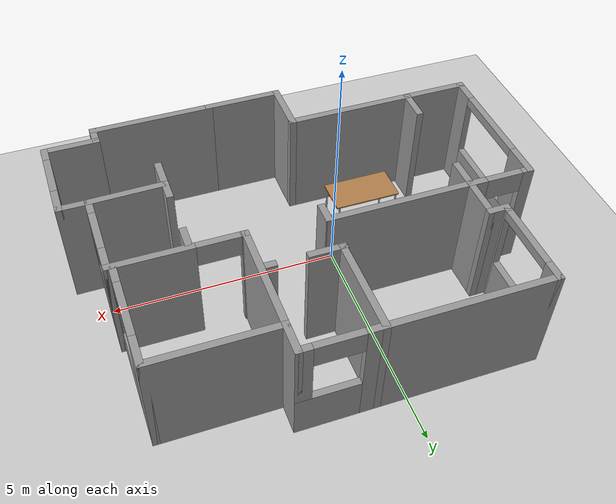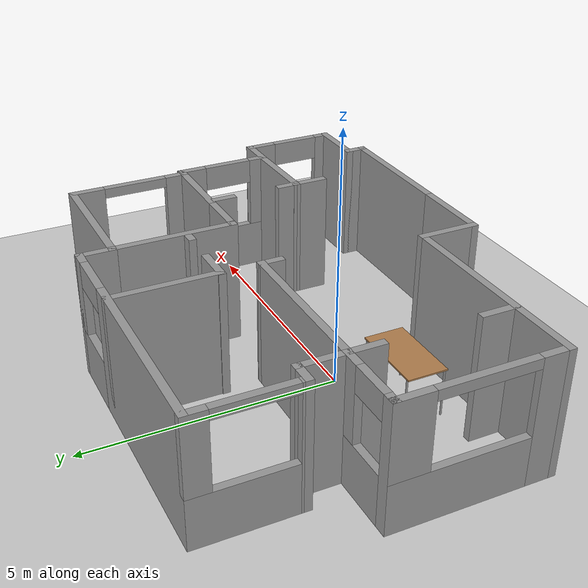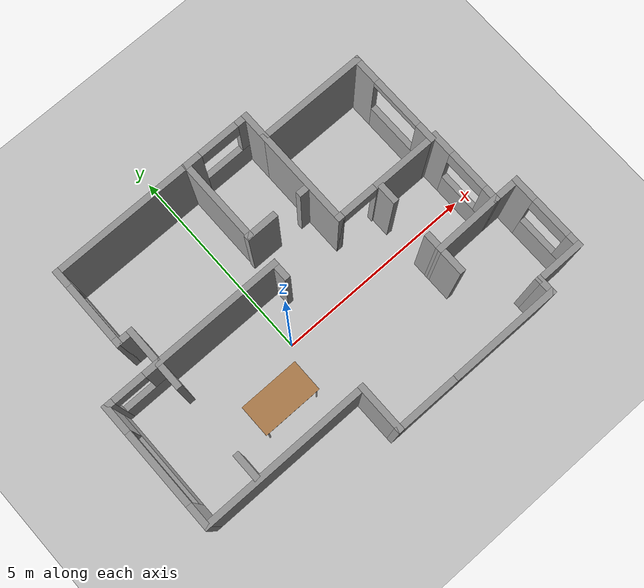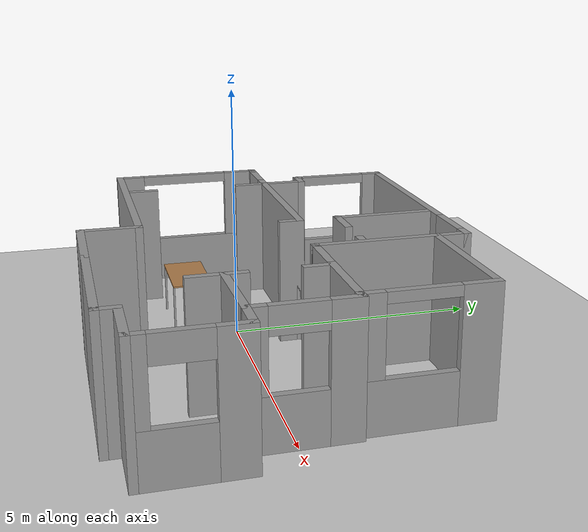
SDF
<sdf version="1.7">
 <world name="default">
  <light name="sun" type="directional">
   <pose>0 0 10 0 -0 0</pose>
   <diffuse>0.8 0.8 0.8 1</diffuse>
   <specular>0.2 0.2 0.2 1</specular>
   <attenuation>
    <range>1000</range>
    <constant>0.9</constant>
    <linear>0.01</linear>
    <quadratic>0.001</quadratic>
   </attenuation>
   <direction>-0.5 0.1 -0.9</direction>
   <spot><inner_angle>0</inner_angle><outer_angle>0</outer_angle><falloff>0</falloff></spot>
  </light>
  <model name="ground_plane">
   <static>1</static>
   <link name="link">
    <collision name="collision">
     <geometry><plane><normal>0 0 1</normal><size>100 100</size></plane></geometry>
     <surface>
      <contact><collide_bitmask>65535</collide_bitmask></contact>
      <friction><ode><mu>100</mu><mu2>50</mu2></ode></friction>
     </surface>
    </collision>
    <visual name="visual">
     <cast_shadows>0</cast_shadows>
     <geometry><plane><normal>0 0 1</normal><size>100 100</size></plane></geometry>
     <material>
      <script><uri>file://media/materials/scripts/gazebo.material</uri><name>Gazebo/Grey</name></script>
     </material>
    </visual>
   </link>
  </model>
  <gravity>0 0 -9.8</gravity>
  <magnetic_field>6e-06 2.3e-05 -4.2e-05</magnetic_field>
  <atmosphere type="adiabatic"/>
  <physics type="ode">
   <max_step_size>0.001</max_step_size>
   <real_time_factor>1</real_time_factor>
   <real_time_update_rate>1000</real_time_update_rate>
  </physics>
  <scene><ambient>0.4 0.4 0.4 1</ambient><background>0.7 0.7 0.7 1</background><shadows>1</shadows></scene>
  <spherical_coordinates>
   <surface_model>EARTH_WGS84</surface_model>
   <latitude_deg>0</latitude_deg>
   <longitude_deg>0</longitude_deg>
   <elevation>0</elevation>
   <heading_deg>0</heading_deg>
  </spherical_coordinates>
  <model name="room2">
   <pose>0.879671 0.481459 0 0 -0 0</pose>
   <link name="Wall_0">
    <pose>-1.15 3.5 0 0 -0 0</pose>
    <visual name="Wall_0_Visual_0">
     <pose>-0.6743 0 1.25 0 -0 0</pose>
     <geometry><box><size>3.9014 0.15 2.5</size></box></geometry>
     <material>
      <script><uri>file://media/materials/scripts/gazebo.material</uri><name>Gazebo/Grey</name></script>
      <ambient>1 1 1 1</ambient>
     </material>
     <meta><layer>0</layer></meta>
    </visual>
    <collision name="Wall_0_Collision_0">
     <geometry><box><size>3.9014 0.15 2.5</size></box></geometry>
     <pose>-0.6743 0 1.25 0 -0 0</pose>
    </collision>
    <visual name="Wall_0_Visual_1">
     <pose>1.9507 0 0.5 0 -0 0</pose>
     <geometry><box><size>1.3486 0.15 1</size></box></geometry>
     <material>
      <script><uri>file://media/materials/scripts/gazebo.material</uri><name>Gazebo/Grey</name></script>
      <ambient>1 1 1 1</ambient>
     </material>
     <meta><layer>0</layer></meta>
    </visual>
    <collision name="Wall_0_Collision_1">
     <geometry><box><size>1.3486 0.15 1</size></box></geometry>
     <pose>1.9507 0 0.5 0 -0 0</pose>
    </collision>
    <visual name="Wall_0_Visual_2">
     <pose>2.4507 0 1.75 0 -0 0</pose>
     <geometry><box><size>0.348601 0.15 1.5</size></box></geometry>
     <material>
      <script><uri>file://media/materials/scripts/gazebo.material</uri><name>Gazebo/Grey</name></script>
      <ambient>1 1 1 1</ambient>
     </material>
     <meta><layer>0</layer></meta>
    </visual>
    <collision name="Wall_0_Collision_2">
     <geometry><box><size>0.348601 0.15 1.5</size></box></geometry>
     <pose>2.4507 0 1.75 0 -0 0</pose>
    </collision>
    <visual name="Wall_0_Visual_3">
     <pose>1.7764 0 2.25 0 -0 0</pose>
     <geometry><box><size>1 0.15 0.5</size></box></geometry>
     <material>
      <script><uri>file://media/materials/scripts/gazebo.material</uri><name>Gazebo/Grey</name></script>
      <ambient>1 1 1 1</ambient>
     </material>
     <meta><layer>0</layer></meta>
    </visual>
    <collision name="Wall_0_Collision_3">
     <geometry><box><size>1 0.15 0.5</size></box></geometry>
     <pose>1.7764 0 2.25 0 -0 0</pose>
    </collision>
   </link>
   <link name="Wall_1">
    <collision name="Wall_1_Collision">
     <geometry><box><size>0.75 0.15 2.5</size></box></geometry>
     <pose>0 0 1.25 0 -0 0</pose>
    </collision>
    <visual name="Wall_1_Visual">
     <pose>0 0 1.25 0 -0 0</pose>
     <geometry><box><size>0.75 0.15 2.5</size></box></geometry>
     <material>
      <script><uri>file://media/materials/scripts/gazebo.material</uri><name>Gazebo/Grey</name></script>
      <ambient>1 1 1 1</ambient>
     </material>
     <meta><layer>0</layer></meta>
    </visual>
    <pose>1.4 3.2 0 0 -0 -1.5708</pose>
   </link>
   <link name="Wall_10">
    <collision name="Wall_10_Collision">
     <geometry><box><size>2.75 0.15 2.5</size></box></geometry>
     <pose>0 0 1.25 0 -0 0</pose>
    </collision>
    <visual name="Wall_10_Visual">
     <pose>0 0 1.25 0 -0 0</pose>
     <geometry><box><size>2.75 0.15 2.5</size></box></geometry>
     <material>
      <script><uri>file://media/materials/scripts/gazebo.material</uri><name>Gazebo/Grey</name></script>
      <ambient>1 1 1 1</ambient>
     </material>
     <meta><layer>0</layer></meta>
    </visual>
    <pose>2.3 -3.5 0 0 -0 3.14159</pose>
   </link>
   <link name="Wall_11">
    <collision name="Wall_11_Collision">
     <geometry><box><size>1.75 0.15 2.5</size></box></geometry>
     <pose>0 0 1.25 0 -0 0</pose>
    </collision>
    <visual name="Wall_11_Visual">
     <pose>0 0 1.25 0 -0 0</pose>
     <geometry><box><size>1.75 0.15 2.5</size></box></geometry>
     <material>
      <script><uri>file://media/materials/scripts/gazebo.material</uri><name>Gazebo/Grey</name></script>
      <ambient>1 1 1 1</ambient>
     </material>
     <meta><layer>0</layer></meta>
    </visual>
    <pose>0.2 -3.5 0 0 -0 3.14159</pose>
   </link>
   <link name="Wall_12">
    <collision name="Wall_12_Collision">
     <geometry><box><size>1.25 0.15 2.5</size></box></geometry>
     <pose>0 0 1.25 0 -0 0</pose>
    </collision>
    <visual name="Wall_12_Visual">
     <pose>0 0 1.25 0 -0 0</pose>
     <geometry><box><size>1.25 0.15 2.5</size></box></geometry>
     <material>
      <script><uri>file://media/materials/scripts/gazebo.material</uri><name>Gazebo/Grey</name></script>
      <ambient>1 1 1 1</ambient>
     </material>
     <meta><layer>0</layer></meta>
    </visual>
    <pose>-0.6 -2.95 0 0 -0 1.5708</pose>
   </link>
   <link name="Wall_13">
    <collision name="Wall_13_Collision">
     <geometry><box><size>4.25 0.15 2.5</size></box></geometry>
     <pose>0 0 1.25 0 -0 0</pose>
    </collision>
    <visual name="Wall_13_Visual">
     <pose>0 0 1.25 0 -0 0</pose>
     <geometry><box><size>4.25 0.15 2.5</size></box></geometry>
     <material>
      <script><uri>file://media/materials/scripts/gazebo.material</uri><name>Gazebo/Grey</name></script>
      <ambient>1 1 1 1</ambient>
     </material>
     <meta><layer>0</layer></meta>
    </visual>
    <pose>-2.65 -2.4 0 0 -0 3.14159</pose>
   </link>
   <link name="Wall_14">
    <pose>-4.7 -0.85 0 0 -0 1.5708</pose>
    <visual name="Wall_14_Visual_0">
     <pose>-1.31691 0 1.25 0 -0 0</pose>
     <geometry><box><size>0.616187 0.15 2.5</size></box></geometry>
     <material>
      <script><uri>file://media/materials/scripts/gazebo.material</uri><name>Gazebo/Grey</name></script>
      <ambient>1 1 1 1</ambient>
     </material>
     <meta><layer>0</layer></meta>
    </visual>
    <collision name="Wall_14_Collision_0">
     <geometry><box><size>0.616187 0.15 2.5</size></box></geometry>
     <pose>-1.31691 0 1.25 0 -0 0</pose>
    </collision>
    <visual name="Wall_14_Visual_1">
     <pose>0.308093 0 0.5 0 -0 0</pose>
     <geometry><box><size>2.63381 0.15 1</size></box></geometry>
     <material>
      <script><uri>file://media/materials/scripts/gazebo.material</uri><name>Gazebo/Grey</name></script>
      <ambient>1 1 1 1</ambient>
     </material>
     <meta><layer>0</layer></meta>
    </visual>
    <collision name="Wall_14_Collision_1">
     <geometry><box><size>2.63381 0.15 1</size></box></geometry>
     <pose>0.308093 0 0.5 0 -0 0</pose>
    </collision>
    <visual name="Wall_14_Visual_2">
     <pose>1.248 0 1.75 0 -0 0</pose>
     <geometry><box><size>0.753992 0.15 1.5</size></box></geometry>
     <material>
      <script><uri>file://media/materials/scripts/gazebo.material</uri><name>Gazebo/Grey</name></script>
      <ambient>1 1 1 1</ambient>
     </material>
     <meta><layer>0</layer></meta>
    </visual>
    <collision name="Wall_14_Collision_2">
     <geometry><box><size>0.753992 0.15 1.5</size></box></geometry>
     <pose>1.248 0 1.75 0 -0 0</pose>
    </collision>
    <visual name="Wall_14_Visual_3">
     <pose>-0.068902 0 2.4 0 -0 0</pose>
     <geometry><box><size>1.87982 0.15 0.2</size></box></geometry>
     <material>
      <script><uri>file://media/materials/scripts/gazebo.material</uri><name>Gazebo/Grey</name></script>
      <ambient>1 1 1 1</ambient>
     </material>
     <meta><layer>0</layer></meta>
    </visual>
    <collision name="Wall_14_Collision_3">
     <geometry><box><size>1.87982 0.15 0.2</size></box></geometry>
     <pose>-0.068902 0 2.4 0 -0 0</pose>
    </collision>
   </link>
   <link name="Wall_15">
    <pose>-4.025 0.7 0 0 -0 0</pose>
    <visual name="Wall_15_Visual_0">
     <pose>-0.621865 0 1.25 0 -0 0</pose>
     <geometry><box><size>0.25627 0.15 2.5</size></box></geometry>
     <material>
      <script><uri>file://media/materials/scripts/gazebo.material</uri><name>Gazebo/Grey</name></script>
      <ambient>1 1 1 1</ambient>
     </material>
     <meta><layer>0</layer></meta>
    </visual>
    <collision name="Wall_15_Collision_0">
     <geometry><box><size>0.25627 0.15 2.5</size></box></geometry>
     <pose>-0.621865 0 1.25 0 -0 0</pose>
    </collision>
    <visual name="Wall_15_Visual_1">
     <pose>0.128135 0 0.5 0 -0 0</pose>
     <geometry><box><size>1.24373 0.15 1</size></box></geometry>
     <material>
      <script><uri>file://media/materials/scripts/gazebo.material</uri><name>Gazebo/Grey</name></script>
      <ambient>1 1 1 1</ambient>
     </material>
     <meta><layer>0</layer></meta>
    </visual>
    <collision name="Wall_15_Collision_1">
     <geometry><box><size>1.24373 0.15 1</size></box></geometry>
     <pose>0.128135 0 0.5 0 -0 0</pose>
    </collision>
    <visual name="Wall_15_Visual_2">
     <pose>0.528135 0 1.75 0 -0 0</pose>
     <geometry><box><size>0.44373 0.15 1.5</size></box></geometry>
     <material>
      <script><uri>file://media/materials/scripts/gazebo.material</uri><name>Gazebo/Grey</name></script>
      <ambient>1 1 1 1</ambient>
     </material>
     <meta><layer>0</layer></meta>
    </visual>
    <collision name="Wall_15_Collision_2">
     <geometry><box><size>0.44373 0.15 1.5</size></box></geometry>
     <pose>0.528135 0 1.75 0 -0 0</pose>
    </collision>
    <visual name="Wall_15_Visual_3">
     <pose>-0.09373 0 2.25 0 -0 0</pose>
     <geometry><box><size>0.8 0.15 0.5</size></box></geometry>
     <material>
      <script><uri>file://media/materials/scripts/gazebo.material</uri><name>Gazebo/Grey</name></script>
      <ambient>1 1 1 1</ambient>
     </material>
     <meta><layer>0</layer></meta>
    </visual>
    <collision name="Wall_15_Collision_3">
     <geometry><box><size>0.8 0.15 0.5</size></box></geometry>
     <pose>-0.09373 0 2.25 0 -0 0</pose>
    </collision>
   </link>
   <link name="Wall_16">
    <collision name="Wall_16_Collision">
     <geometry><box><size>1 0.15 2.5</size></box></geometry>
     <pose>0 0 1.25 0 -0 0</pose>
    </collision>
    <visual name="Wall_16_Visual">
     <pose>0 0 1.25 0 -0 0</pose>
     <geometry><box><size>1 0.15 2.5</size></box></geometry>
     <material>
      <script><uri>file://media/materials/scripts/gazebo.material</uri><name>Gazebo/Grey</name></script>
      <ambient>1 1 1 1</ambient>
     </material>
     <meta><layer>0</layer></meta>
    </visual>
    <pose>-3.35 1.125 0 0 -0 1.5708</pose>
   </link>
   <link name="Wall_17">
    <collision name="Wall_17_Collision">
     <geometry><box><size>0.5 0.15 2.5</size></box></geometry>
     <pose>0 0 1.25 0 -0 0</pose>
    </collision>
    <visual name="Wall_17_Visual">
     <pose>0 0 1.25 0 -0 0</pose>
     <geometry><box><size>0.5 0.15 2.5</size></box></geometry>
     <material>
      <script><uri>file://media/materials/scripts/gazebo.material</uri><name>Gazebo/Grey</name></script>
      <ambient>1 1 1 1</ambient>
     </material>
     <meta><layer>0</layer></meta>
    </visual>
    <pose>-3.525 1.55 0 0 -0 3.14159</pose>
   </link>
   <link name="Wall_18">
    <pose>-3.7 2.525 0 0 -0 1.5708</pose>
    <visual name="Wall_18_Visual_0">
     <pose>-0.952691 0 1.25 0 -0 0</pose>
     <geometry><box><size>0.194617 0.15 2.5</size></box></geometry>
     <material>
      <script><uri>file://media/materials/scripts/gazebo.material</uri><name>Gazebo/Grey</name></script>
      <ambient>1 1 1 1</ambient>
     </material>
     <meta><layer>0</layer></meta>
    </visual>
    <collision name="Wall_18_Collision_0">
     <geometry><box><size>0.194617 0.15 2.5</size></box></geometry>
     <pose>-0.952691 0 1.25 0 -0 0</pose>
    </collision>
    <visual name="Wall_18_Visual_1">
     <pose>0.097309 0 0.5 0 -0 0</pose>
     <geometry><box><size>1.90538 0.15 1</size></box></geometry>
     <material>
      <script><uri>file://media/materials/scripts/gazebo.material</uri><name>Gazebo/Grey</name></script>
      <ambient>1 1 1 1</ambient>
     </material>
     <meta><layer>0</layer></meta>
    </visual>
    <collision name="Wall_18_Collision_1">
     <geometry><box><size>1.90538 0.15 1</size></box></geometry>
     <pose>0.097309 0 0.5 0 -0 0</pose>
    </collision>
    <visual name="Wall_18_Visual_2">
     <pose>0.824297 0 1.75 0 -0 0</pose>
     <geometry><box><size>0.451407 0.15 1.5</size></box></geometry>
     <material>
      <script><uri>file://media/materials/scripts/gazebo.material</uri><name>Gazebo/Grey</name></script>
      <ambient>1 1 1 1</ambient>
     </material>
     <meta><layer>0</layer></meta>
    </visual>
    <collision name="Wall_18_Collision_2">
     <geometry><box><size>0.451407 0.15 1.5</size></box></geometry>
     <pose>0.824297 0 1.75 0 -0 0</pose>
    </collision>
    <visual name="Wall_18_Visual_3">
     <pose>-0.128395 0 2.4 0 -0 0</pose>
     <geometry><box><size>1.45398 0.15 0.2</size></box></geometry>
     <material>
      <script><uri>file://media/materials/scripts/gazebo.material</uri><name>Gazebo/Grey</name></script>
      <ambient>1 1 1 1</ambient>
     </material>
     <meta><layer>0</layer></meta>
    </visual>
    <collision name="Wall_18_Collision_3">
     <geometry><box><size>1.45398 0.15 0.2</size></box></geometry>
     <pose>-0.128395 0 2.4 0 -0 0</pose>
    </collision>
   </link>
   <link name="Wall_2">
    <collision name="Wall_2_Collision">
     <geometry><box><size>2.75 0.15 2.5</size></box></geometry>
     <pose>0 0 1.25 0 -0 0</pose>
    </collision>
    <visual name="Wall_2_Visual">
     <pose>0 0 1.25 0 -0 0</pose>
     <geometry><box><size>2.75 0.15 2.5</size></box></geometry>
     <material>
      <script><uri>file://media/materials/scripts/gazebo.material</uri><name>Gazebo/Grey</name></script>
      <ambient>1 1 1 1</ambient>
     </material>
     <meta><layer>0</layer></meta>
    </visual>
    <pose>2.7 2.9 0 0 -0 0</pose>
   </link>
   <link name="Wall_20">
    <collision name="Wall_20_Collision">
     <geometry><box><size>2.15 0.15 2.5</size></box></geometry>
     <pose>0 0 1.25 0 -0 0</pose>
    </collision>
    <visual name="Wall_20_Visual">
     <pose>0 0 1.25 0 -0 0</pose>
     <geometry><box><size>2.15 0.15 2.5</size></box></geometry>
     <material>
      <script><uri>file://media/materials/scripts/gazebo.material</uri><name>Gazebo/Grey</name></script>
      <ambient>1 1 1 1</ambient>
     </material>
     <meta><layer>0</layer></meta>
    </visual>
    <pose>-0.240466 2.5 0 0 -0 -1.5708</pose>
   </link>
   <link name="Wall_21">
    <collision name="Wall_21_Collision">
     <geometry><box><size>0.810341 0.15 2.5</size></box></geometry>
     <pose>0 0 1.25 0 -0 0</pose>
    </collision>
    <visual name="Wall_21_Visual">
     <pose>0 0 1.25 0 -0 0</pose>
     <geometry><box><size>0.810341 0.15 2.5</size></box></geometry>
     <material>
      <script><uri>file://media/materials/scripts/gazebo.material</uri><name>Gazebo/Grey</name></script>
      <ambient>1 1 1 1</ambient>
     </material>
     <meta><layer>0</layer></meta>
    </visual>
    <pose>0.069591 1.48017 0 0 -0 0.00086</pose>
   </link>
   <link name="Wall_23">
    <collision name="Wall_23_Collision">
     <geometry><box><size>2.5 0.15 2.5</size></box></geometry>
     <pose>0 0 1.25 0 -0 0</pose>
    </collision>
    <visual name="Wall_23_Visual">
     <pose>0 0 1.25 0 -0 0</pose>
     <geometry><box><size>2.5 0.15 2.5</size></box></geometry>
     <material>
      <script><uri>file://media/materials/scripts/gazebo.material</uri><name>Gazebo/Grey</name></script>
      <ambient>1 1 1 1</ambient>
     </material>
     <meta><layer>0</layer></meta>
    </visual>
    <pose>1.4 1.725 0 0 -0 -1.5708</pose>
   </link>
   <link name="Wall_24">
    <pose>2.75 0.55 0 0 -0 0</pose>
    <visual name="Wall_24_Visual_0">
     <pose>-1.33772 0 1.25 0 -0 0</pose>
     <geometry><box><size>0.174561 0.15 2.5</size></box></geometry>
     <material>
      <script><uri>file://media/materials/scripts/gazebo.material</uri><name>Gazebo/Grey</name></script>
      <ambient>1 1 1 1</ambient>
     </material>
     <meta><layer>0</layer></meta>
    </visual>
    <collision name="Wall_24_Collision_0">
     <geometry><box><size>0.174561 0.15 2.5</size></box></geometry>
     <pose>-1.33772 0 1.25 0 -0 0</pose>
    </collision>
    <visual name="Wall_24_Visual_1">
     <pose>0.53728 0 1.25 0 -0 0</pose>
     <geometry><box><size>1.77544 0.15 2.5</size></box></geometry>
     <material>
      <script><uri>file://media/materials/scripts/gazebo.material</uri><name>Gazebo/Grey</name></script>
      <ambient>1 1 1 1</ambient>
     </material>
     <meta><layer>0</layer></meta>
    </visual>
    <collision name="Wall_24_Collision_1">
     <geometry><box><size>1.77544 0.15 2.5</size></box></geometry>
     <pose>0.53728 0 1.25 0 -0 0</pose>
    </collision>
    <visual name="Wall_24_Visual_2">
     <pose>-0.800439 0 2.25 0 -0 0</pose>
     <geometry><box><size>0.9 0.15 0.5</size></box></geometry>
     <material>
      <script><uri>file://media/materials/scripts/gazebo.material</uri><name>Gazebo/Grey</name></script>
      <ambient>1 1 1 1</ambient>
     </material>
     <meta><layer>0</layer></meta>
    </visual>
    <collision name="Wall_24_Collision_2">
     <geometry><box><size>0.9 0.15 0.5</size></box></geometry>
     <pose>-0.800439 0 2.25 0 -0 0</pose>
    </collision>
   </link>
   <link name="Wall_26">
    <collision name="Wall_26_Collision">
     <geometry><box><size>0.5 0.15 2.5</size></box></geometry>
     <pose>0 0 1.25 0 -0 0</pose>
    </collision>
    <visual name="Wall_26_Visual">
     <pose>0 0 1.25 0 -0 0</pose>
     <geometry><box><size>0.5 0.15 2.5</size></box></geometry>
     <material>
      <script><uri>file://media/materials/scripts/gazebo.material</uri><name>Gazebo/Grey</name></script>
      <ambient>1 1 1 1</ambient>
     </material>
     <meta><layer>0</layer></meta>
    </visual>
    <pose>2.51322 0.260571 0 0 -0 -1.5708</pose>
   </link>
   <link name="Wall_28">
    <collision name="Wall_28_Collision">
     <geometry><box><size>0.5 0.15 2.5</size></box></geometry>
     <pose>0 0 1.25 0 -0 0</pose>
    </collision>
    <visual name="Wall_28_Visual">
     <pose>0 0 1.25 0 -0 0</pose>
     <geometry><box><size>0.5 0.15 2.5</size></box></geometry>
     <material>
      <script><uri>file://media/materials/scripts/gazebo.material</uri><name>Gazebo/Grey</name></script>
      <ambient>1 1 1 1</ambient>
     </material>
     <meta><layer>0</layer></meta>
    </visual>
    <pose>2.52644 -1.1545 0 0 -0 -1.5708</pose>
   </link>
   <link name="Wall_29">
    <collision name="Wall_29_Collision">
     <geometry><box><size>1.72383 0.15 2.5</size></box></geometry>
     <pose>0 0 1.25 0 -0 0</pose>
    </collision>
    <visual name="Wall_29_Visual">
     <pose>0 0 1.25 0 -0 0</pose>
     <geometry><box><size>1.72383 0.15 2.5</size></box></geometry>
     <material>
      <script><uri>file://media/materials/scripts/gazebo.material</uri><name>Gazebo/Grey</name></script>
      <ambient>1 1 1 1</ambient>
     </material>
     <meta><layer>0</layer></meta>
    </visual>
    <pose>3.31322 -1.31475 0 0 -0 0.018748</pose>
   </link>
   <link name="Wall_3">
    <pose>4 1.725 0 0 -0 -1.5708</pose>
    <visual name="Wall_3_Visual_0">
     <pose>-0.894177 0 1.25 0 -0 0</pose>
     <geometry><box><size>0.711646 0.15 2.5</size></box></geometry>
     <material>
      <script><uri>file://media/materials/scripts/gazebo.material</uri><name>Gazebo/Grey</name></script>
      <ambient>1 1 1 1</ambient>
     </material>
     <meta><layer>0</layer></meta>
    </visual>
    <collision name="Wall_3_Collision_0">
     <geometry><box><size>0.711646 0.15 2.5</size></box></geometry>
     <pose>-0.894177 0 1.25 0 -0 0</pose>
    </collision>
    <visual name="Wall_3_Visual_1">
     <pose>0.355823 0 0.5 0 -0 0</pose>
     <geometry><box><size>1.78835 0.15 1</size></box></geometry>
     <material>
      <script><uri>file://media/materials/scripts/gazebo.material</uri><name>Gazebo/Grey</name></script>
      <ambient>1 1 1 1</ambient>
     </material>
     <meta><layer>0</layer></meta>
    </visual>
    <collision name="Wall_3_Collision_1">
     <geometry><box><size>1.78835 0.15 1</size></box></geometry>
     <pose>0.355823 0 0.5 0 -0 0</pose>
    </collision>
    <visual name="Wall_3_Visual_2">
     <pose>1.00582 0 1.75 0 -0 0</pose>
     <geometry><box><size>0.488354 0.15 1.5</size></box></geometry>
     <material>
      <script><uri>file://media/materials/scripts/gazebo.material</uri><name>Gazebo/Grey</name></script>
      <ambient>1 1 1 1</ambient>
     </material>
     <meta><layer>0</layer></meta>
    </visual>
    <collision name="Wall_3_Collision_2">
     <geometry><box><size>0.488354 0.15 1.5</size></box></geometry>
     <pose>1.00582 0 1.75 0 -0 0</pose>
    </collision>
    <visual name="Wall_3_Visual_3">
     <pose>0.111646 0 2.4 0 -0 0</pose>
     <geometry><box><size>1.3 0.15 0.2</size></box></geometry>
     <material>
      <script><uri>file://media/materials/scripts/gazebo.material</uri><name>Gazebo/Grey</name></script>
      <ambient>1 1 1 1</ambient>
     </material>
     <meta><layer>0</layer></meta>
    </visual>
    <collision name="Wall_3_Collision_3">
     <geometry><box><size>1.3 0.15 0.2</size></box></geometry>
     <pose>0.111646 0 2.4 0 -0 0</pose>
    </collision>
   </link>
   <link name="Wall_31">
    <collision name="Wall_31_Collision">
     <geometry><box><size>0.25 0.15 2.5</size></box></geometry>
     <pose>0 0 1.25 0 -0 0</pose>
    </collision>
    <visual name="Wall_31_Visual">
     <pose>0 0 1.25 0 -0 0</pose>
     <geometry><box><size>0.25 0.15 2.5</size></box></geometry>
     <material>
      <script><uri>file://media/materials/scripts/gazebo.material</uri><name>Gazebo/Grey</name></script>
      <ambient>1 1 1 1</ambient>
     </material>
     <meta><layer>0</layer></meta>
    </visual>
    <pose>1.20871 1.47647 0 0 -0 0</pose>
   </link>
   <link name="Wall_33">
    <collision name="Wall_33_Collision">
     <geometry><box><size>0.75 0.15 2.5</size></box></geometry>
     <pose>0 0 1.25 0 -0 0</pose>
    </collision>
    <visual name="Wall_33_Visual">
     <pose>0 0 1.25 0 -0 0</pose>
     <geometry><box><size>0.75 0.15 2.5</size></box></geometry>
     <material>
      <script><uri>file://media/materials/scripts/gazebo.material</uri><name>Gazebo/Grey</name></script>
      <ambient>1 1 1 1</ambient>
     </material>
     <meta><layer>0</layer></meta>
    </visual>
    <pose>-3.35 0.4 0 0 -0 -1.5708</pose>
   </link>
   <link name="Wall_35">
    <collision name="Wall_35_Collision">
     <geometry><box><size>0.75 0.15 2.5</size></box></geometry>
     <pose>0 0 1.25 0 -0 0</pose>
    </collision>
    <visual name="Wall_35_Visual">
     <pose>0 0 1.25 0 -0 0</pose>
     <geometry><box><size>0.75 0.15 2.5</size></box></geometry>
     <material>
      <script><uri>file://media/materials/scripts/gazebo.material</uri><name>Gazebo/Grey</name></script>
      <ambient>1 1 1 1</ambient>
     </material>
     <meta><layer>0</layer></meta>
    </visual>
    <pose>-3.35829 -2.0782 0 0 -0 -1.5708</pose>
   </link>
   <link name="Wall_37">
    <collision name="Wall_37_Collision">
     <geometry><box><size>3.25 0.15 2.5</size></box></geometry>
     <pose>0 0 1.25 0 -0 0</pose>
    </collision>
    <visual name="Wall_37_Visual">
     <pose>0 0 1.25 0 -0 0</pose>
     <geometry><box><size>3.25 0.15 2.5</size></box></geometry>
     <material>
      <script><uri>file://media/materials/scripts/gazebo.material</uri><name>Gazebo/Grey</name></script>
      <ambient>1 1 1 1</ambient>
     </material>
     <meta><layer>0</layer></meta>
    </visual>
    <pose>-1.8 0.7 0 0 -0 0</pose>
   </link>
   <link name="Wall_38">
    <collision name="Wall_38_Collision">
     <geometry><box><size>0.5 0.15 2.5</size></box></geometry>
     <pose>0 0 1.25 0 -0 0</pose>
    </collision>
    <visual name="Wall_38_Visual">
     <pose>0 0 1.25 0 -0 0</pose>
     <geometry><box><size>0.5 0.15 2.5</size></box></geometry>
     <material>
      <script><uri>file://media/materials/scripts/gazebo.material</uri><name>Gazebo/Grey</name></script>
      <ambient>1 1 1 1</ambient>
     </material>
     <meta><layer>0</layer></meta>
    </visual>
    <pose>-0.25 0.525 0 0 -0 -1.5708</pose>
   </link>
   <link name="Wall_4">
    <collision name="Wall_4_Collision">
     <geometry><box><size>0.25 0.15 2.5</size></box></geometry>
     <pose>0 0 1.25 0 -0 0</pose>
    </collision>
    <visual name="Wall_4_Visual">
     <pose>0 0 1.25 0 -0 0</pose>
     <geometry><box><size>0.25 0.15 2.5</size></box></geometry>
     <material>
      <script><uri>file://media/materials/scripts/gazebo.material</uri><name>Gazebo/Grey</name></script>
      <ambient>1 1 1 1</ambient>
     </material>
     <meta><layer>0</layer></meta>
    </visual>
    <pose>4.05 0.55 0 0 -0 0</pose>
   </link>
   <link name="Wall_40">
    <collision name="Wall_40_Collision">
     <geometry><box><size>0.75 0.15 2.5</size></box></geometry>
     <pose>0 0 1.25 0 -0 0</pose>
    </collision>
    <visual name="Wall_40_Visual">
     <pose>0 0 1.25 0 -0 0</pose>
     <geometry><box><size>0.75 0.15 2.5</size></box></geometry>
     <material>
      <script><uri>file://media/materials/scripts/gazebo.material</uri><name>Gazebo/Grey</name></script>
      <ambient>1 1 1 1</ambient>
     </material>
     <meta><layer>0</layer></meta>
    </visual>
    <pose>2.52644 -1.6295 0 0 -0 -1.5708</pose>
   </link>
   <link name="Wall_5">
    <pose>4.1 -0.375 0 0 -0 -1.5708</pose>
    <visual name="Wall_5_Visual_0">
     <pose>-0.702378 0 1.25 0 -0 0</pose>
     <geometry><box><size>0.595244 0.15 2.5</size></box></geometry>
     <material>
      <script><uri>file://media/materials/scripts/gazebo.material</uri><name>Gazebo/Grey</name></script>
      <ambient>1 1 1 1</ambient>
     </material>
     <meta><layer>0</layer></meta>
    </visual>
    <collision name="Wall_5_Collision_0">
     <geometry><box><size>0.595244 0.15 2.5</size></box></geometry>
     <pose>-0.702378 0 1.25 0 -0 0</pose>
    </collision>
    <visual name="Wall_5_Visual_1">
     <pose>0.297622 0 0.5 0 -0 0</pose>
     <geometry><box><size>1.40476 0.15 1</size></box></geometry>
     <material>
      <script><uri>file://media/materials/scripts/gazebo.material</uri><name>Gazebo/Grey</name></script>
      <ambient>1 1 1 1</ambient>
     </material>
     <meta><layer>0</layer></meta>
    </visual>
    <collision name="Wall_5_Collision_1">
     <geometry><box><size>1.40476 0.15 1</size></box></geometry>
     <pose>0.297622 0 0.5 0 -0 0</pose>
    </collision>
    <visual name="Wall_5_Visual_2">
     <pose>0.797622 0 1.75 0 -0 0</pose>
     <geometry><box><size>0.404756 0.15 1.5</size></box></geometry>
     <material>
      <script><uri>file://media/materials/scripts/gazebo.material</uri><name>Gazebo/Grey</name></script>
      <ambient>1 1 1 1</ambient>
     </material>
     <meta><layer>0</layer></meta>
    </visual>
    <collision name="Wall_5_Collision_2">
     <geometry><box><size>0.404756 0.15 1.5</size></box></geometry>
     <pose>0.797622 0 1.75 0 -0 0</pose>
    </collision>
    <visual name="Wall_5_Visual_3">
     <pose>0.095244 0 2.25 0 -0 0</pose>
     <geometry><box><size>1 0.15 0.5</size></box></geometry>
     <material>
      <script><uri>file://media/materials/scripts/gazebo.material</uri><name>Gazebo/Grey</name></script>
      <ambient>1 1 1 1</ambient>
     </material>
     <meta><layer>0</layer></meta>
    </visual>
    <collision name="Wall_5_Collision_3">
     <geometry><box><size>1 0.15 0.5</size></box></geometry>
     <pose>0.095244 0 2.25 0 -0 0</pose>
    </collision>
   </link>
   <link name="Wall_6">
    <collision name="Wall_6_Collision">
     <geometry><box><size>0.75 0.15 2.5</size></box></geometry>
     <pose>0 0 1.25 0 -0 0</pose>
    </collision>
    <visual name="Wall_6_Visual">
     <pose>0 0 1.25 0 -0 0</pose>
     <geometry><box><size>0.75 0.15 2.5</size></box></geometry>
     <material>
      <script><uri>file://media/materials/scripts/gazebo.material</uri><name>Gazebo/Grey</name></script>
      <ambient>1 1 1 1</ambient>
     </material>
     <meta><layer>0</layer></meta>
    </visual>
    <pose>4.4 -1.3 0 0 -0 0</pose>
   </link>
   <link name="Wall_7">
    <pose>4.7 -2.225 0 0 -0 -1.5708</pose>
    <visual name="Wall_7_Visual_0">
     <pose>-0.684435 0 1.25 0 -0 0</pose>
     <geometry><box><size>0.631129 0.15 2.5</size></box></geometry>
     <material>
      <script><uri>file://media/materials/scripts/gazebo.material</uri><name>Gazebo/Grey</name></script>
      <ambient>1 1 1 1</ambient>
     </material>
     <meta><layer>0</layer></meta>
    </visual>
    <collision name="Wall_7_Collision_0">
     <geometry><box><size>0.631129 0.15 2.5</size></box></geometry>
     <pose>-0.684435 0 1.25 0 -0 0</pose>
    </collision>
    <visual name="Wall_7_Visual_1">
     <pose>0.315565 0 0.5 0 -0 0</pose>
     <geometry><box><size>1.36887 0.15 1</size></box></geometry>
     <material>
      <script><uri>file://media/materials/scripts/gazebo.material</uri><name>Gazebo/Grey</name></script>
      <ambient>1 1 1 1</ambient>
     </material>
     <meta><layer>0</layer></meta>
    </visual>
    <collision name="Wall_7_Collision_1">
     <geometry><box><size>1.36887 0.15 1</size></box></geometry>
     <pose>0.315565 0 0.5 0 -0 0</pose>
    </collision>
    <visual name="Wall_7_Visual_2">
     <pose>0.815565 0 1.75 0 -0 0</pose>
     <geometry><box><size>0.368871 0.15 1.5</size></box></geometry>
     <material>
      <script><uri>file://media/materials/scripts/gazebo.material</uri><name>Gazebo/Grey</name></script>
      <ambient>1 1 1 1</ambient>
     </material>
     <meta><layer>0</layer></meta>
    </visual>
    <collision name="Wall_7_Collision_2">
     <geometry><box><size>0.368871 0.15 1.5</size></box></geometry>
     <pose>0.815565 0 1.75 0 -0 0</pose>
    </collision>
    <visual name="Wall_7_Visual_3">
     <pose>0.131129 0 2.25 0 -0 0</pose>
     <geometry><box><size>1 0.15 0.5</size></box></geometry>
     <material>
      <script><uri>file://media/materials/scripts/gazebo.material</uri><name>Gazebo/Grey</name></script>
      <ambient>1 1 1 1</ambient>
     </material>
     <meta><layer>0</layer></meta>
    </visual>
    <collision name="Wall_7_Collision_3">
     <geometry><box><size>1 0.15 0.5</size></box></geometry>
     <pose>0.131129 0 2.25 0 -0 0</pose>
    </collision>
   </link>
   <link name="Wall_8">
    <collision name="Wall_8_Collision">
     <geometry><box><size>1.25 0.15 2.5</size></box></geometry>
     <pose>0 0 1.25 0 -0 0</pose>
    </collision>
    <visual name="Wall_8_Visual">
     <pose>0 0 1.25 0 -0 0</pose>
     <geometry><box><size>1.25 0.15 2.5</size></box></geometry>
     <material>
      <script><uri>file://media/materials/scripts/gazebo.material</uri><name>Gazebo/Grey</name></script>
      <ambient>1 1 1 1</ambient>
     </material>
     <meta><layer>0</layer></meta>
    </visual>
    <pose>4.15 -3.15 0 0 -0 3.14159</pose>
   </link>
   <link name="Wall_9">
    <collision name="Wall_9_Collision">
     <geometry><box><size>0.5 0.15 2.5</size></box></geometry>
     <pose>0 0 1.25 0 -0 0</pose>
    </collision>
    <visual name="Wall_9_Visual">
     <pose>0 0 1.25 0 -0 0</pose>
     <geometry><box><size>0.5 0.15 2.5</size></box></geometry>
     <material>
      <script><uri>file://media/materials/scripts/gazebo.material</uri><name>Gazebo/Grey</name></script>
      <ambient>1 1 1 1</ambient>
     </material>
     <meta><layer>0</layer></meta>
    </visual>
    <pose>3.6 -3.325 0 0 -0 -1.5708</pose>
   </link>
   <static>1</static>
  </model>
  <model name="Table">
   <static>1</static>
   <link name="link">
    <collision name="surface">
     <pose>0 0 1 0 -0 0</pose>
     <geometry><box><size>1.5 0.8 0.03</size></box></geometry>
     <surface><friction><ode><mu>0.6</mu><mu2>0.6</mu2></ode></friction></surface>
    </collision>
    <visual name="visual1">
     <pose>0 0 1 0 -0 0</pose>
     <geometry><box><size>1.5 0.8 0.03</size></box></geometry>
     <material>
      <diffuse>1 1 1 1</diffuse>
      <script><uri>file://media/materials/scripts/gazebo.material</uri><name>Gazebo/Wood</name></script>
      <pbr>
       <metal>
        <albedo_map>https://fuel.ignitionrobotics.org/1.0/openrobotics/models/table/3/files/Table_Diffuse.jpg</albedo_map>
       </metal>
      </pbr>
     </material>
    </visual>
    <collision name="front_left_leg">
     <pose>0.68 0.38 0.5 0 -0 0</pose>
     <geometry><cylinder><radius>0.02</radius><length>1</length></cylinder></geometry>
    </collision>
    <visual name="front_left_leg">
     <pose>0.68 0.38 0.5 0 -0 0</pose>
     <geometry><cylinder><radius>0.02</radius><length>1</length></cylinder></geometry>
     <material>
      <diffuse>0.5 0.5 0.5 1</diffuse>
      <script><uri>file://media/materials/scripts/gazebo.material</uri><name>Gazebo/Grey</name></script>
     </material>
    </visual>
    <collision name="front_right_leg">
     <pose>0.68 -0.38 0.5 0 -0 0</pose>
     <geometry><cylinder><radius>0.02</radius><length>1</length></cylinder></geometry>
    </collision>
    <visual name="front_right_leg">
     <pose>0.68 -0.38 0.5 0 -0 0</pose>
     <geometry><cylinder><radius>0.02</radius><length>1</length></cylinder></geometry>
     <material>
      <diffuse>0.5 0.5 0.5 1</diffuse>
      <script><uri>file://media/materials/scripts/gazebo.material</uri><name>Gazebo/Grey</name></script>
     </material>
    </visual>
    <collision name="back_right_leg">
     <pose>-0.68 -0.38 0.5 0 -0 0</pose>
     <geometry><cylinder><radius>0.02</radius><length>1</length></cylinder></geometry>
    </collision>
    <visual name="back_right_leg">
     <pose>-0.68 -0.38 0.5 0 -0 0</pose>
     <geometry><cylinder><radius>0.02</radius><length>1</length></cylinder></geometry>
     <material>
      <diffuse>0.5 0.5 0.5 1</diffuse>
      <script><uri>file://media/materials/scripts/gazebo.material</uri><name>Gazebo/Grey</name></script>
     </material>
    </visual>
    <collision name="back_left_leg">
     <pose>-0.68 0.38 0.5 0 -0 0</pose>
     <geometry><cylinder><radius>0.02</radius><length>1</length></cylinder></geometry>
    </collision>
    <visual name="back_left_leg">
     <pose>-0.68 0.38 0.5 0 -0 0</pose>
     <geometry><cylinder><radius>0.02</radius><length>1</length></cylinder></geometry>
     <material>
      <diffuse>0.5 0.5 0.5 1</diffuse>
      <script><uri>file://media/materials/scripts/gazebo.material</uri><name>Gazebo/Grey</name></script>
     </material>
    </visual>
   </link>
   <pose>-1.01506 -0.836325 0 0 -0 0</pose>
  </model>
 </world>
</sdf>
